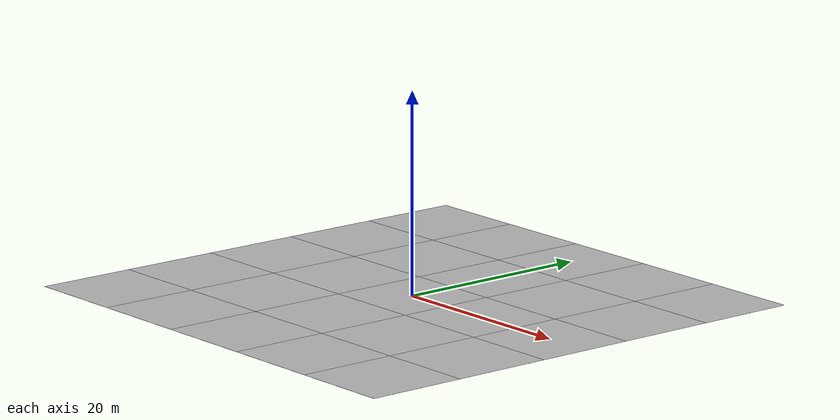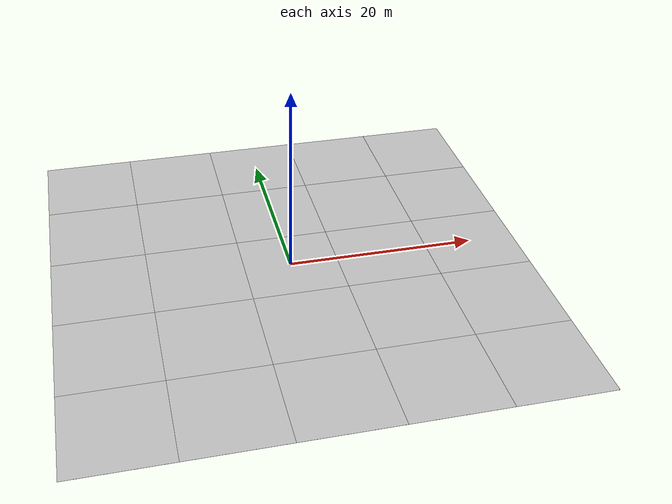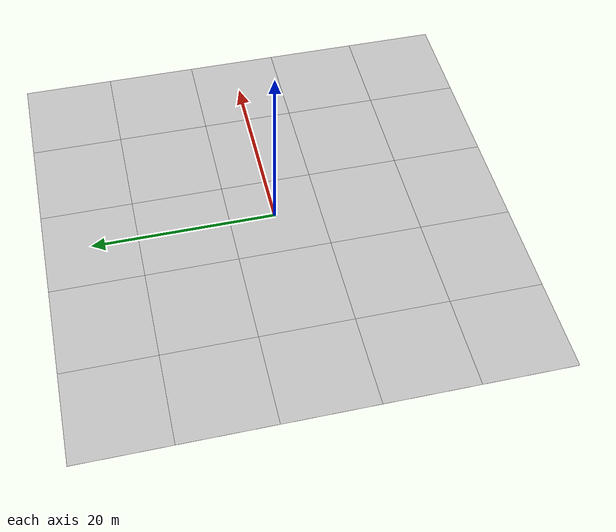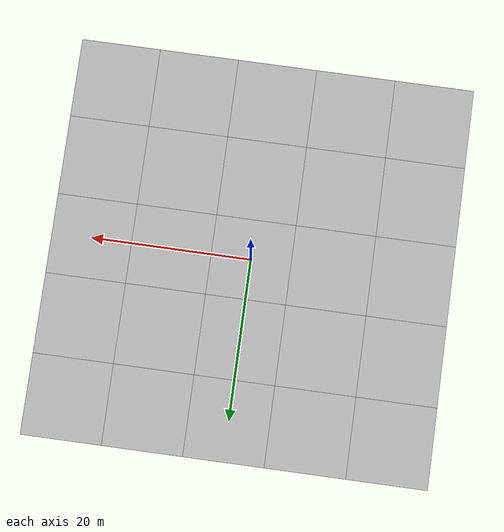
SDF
<?xml version='1.0'?>
<sdf version='1.6'>
  <world name='world_template_empty'>
    <gravity>0 0 -9.8</gravity>
    <scene>
      <ambient>0.4 0.4 0.4 1</ambient>
      <background>0.7 0.7 0.7 1</background>
      <shadows>true</shadows>
    </scene>

    <light name='sun' type='directional'>
      <cast_shadows>true</cast_shadows>
      <pose>0 0 20 0 0 0</pose>
      <diffuse>0.8 0.8 0.8 1</diffuse>
      <specular>0.2 0.2 0.2 1</specular>
      <attenuation>
        <range>1000</range>
        <constant>0.9</constant>
        <linear>0.01</linear>
        <quadratic>0.001</quadratic>
      </attenuation>
      <direction>-0.5 0.1 -0.9</direction>
    </light>

    <include>
      <uri>model://green_ground</uri>
      <name>green_ground</name>
      <pose>0 0 0 0 0 0</pose>
    </include>

    <!-- Fallback plain ground (use this only if green_ground is unavailable) -->

    <!-- Example: add your own instances using models from this package -->
  </world>
</sdf>

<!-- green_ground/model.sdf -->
<sdf version="1.6">
  <model name="green_ground">
    <static>true</static>
    <link name="link">
      <collision name="collision">
        <pose>0 0 0 0 0 0</pose>
        <geometry>
          <plane>
            <normal>0 0 1</normal>
            <size>200 200</size>
          </plane>
        </geometry>
      </collision>
      <visual name='visual_m20_m20'>
        <pose>-20 -20 0 0 0 0</pose>
        <geometry>
          <mesh>
            <uri>model://world_jean_ground/meshes/world_jean_ground.obj</uri>
            <scale>1 1 1</scale>
          </mesh>
        </geometry>
      </visual>      <visual name='visual_m20_m10'>
        <pose>-20 -10 0 0 0 0</pose>
        <geometry>
          <mesh>
            <uri>model://world_jean_ground/meshes/world_jean_ground.obj</uri>
            <scale>1 1 1</scale>
          </mesh>
        </geometry>
      </visual>      <visual name='visual_m20_0'>
        <pose>-20 0 0 0 0 0</pose>
        <geometry>
          <mesh>
            <uri>model://world_jean_ground/meshes/world_jean_ground.obj</uri>
            <scale>1 1 1</scale>
          </mesh>
        </geometry>
      </visual>      <visual name='visual_m20_10'>
        <pose>-20 10 0 0 0 0</pose>
        <geometry>
          <mesh>
            <uri>model://world_jean_ground/meshes/world_jean_ground.obj</uri>
            <scale>1 1 1</scale>
          </mesh>
        </geometry>
      </visual>      <visual name='visual_m20_20'>
        <pose>-20 20 0 0 0 0</pose>
        <geometry>
          <mesh>
            <uri>model://world_jean_ground/meshes/world_jean_ground.obj</uri>
            <scale>1 1 1</scale>
          </mesh>
        </geometry>
      </visual>      <visual name='visual_m10_m20'>
        <pose>-10 -20 0 0 0 0</pose>
        <geometry>
          <mesh>
            <uri>model://world_jean_ground/meshes/world_jean_ground.obj</uri>
            <scale>1 1 1</scale>
          </mesh>
        </geometry>
      </visual>      <visual name='visual_m10_m10'>
        <pose>-10 -10 0 0 0 0</pose>
        <geometry>
          <mesh>
            <uri>model://world_jean_ground/meshes/world_jean_ground.obj</uri>
            <scale>1 1 1</scale>
          </mesh>
        </geometry>
      </visual>      <visual name='visual_m10_0'>
        <pose>-10 0 0 0 0 0</pose>
        <geometry>
          <mesh>
            <uri>model://world_jean_ground/meshes/world_jean_ground.obj</uri>
            <scale>1 1 1</scale>
          </mesh>
        </geometry>
      </visual>      <visual name='visual_m10_10'>
        <pose>-10 10 0 0 0 0</pose>
        <geometry>
          <mesh>
            <uri>model://world_jean_ground/meshes/world_jean_ground.obj</uri>
            <scale>1 1 1</scale>
          </mesh>
        </geometry>
      </visual>      <visual name='visual_m10_20'>
        <pose>-10 20 0 0 0 0</pose>
        <geometry>
          <mesh>
            <uri>model://world_jean_ground/meshes/world_jean_ground.obj</uri>
            <scale>1 1 1</scale>
          </mesh>
        </geometry>
      </visual>      <visual name='visual_0_m20'>
        <pose>0 -20 0 0 0 0</pose>
        <geometry>
          <mesh>
            <uri>model://world_jean_ground/meshes/world_jean_ground.obj</uri>
            <scale>1 1 1</scale>
          </mesh>
        </geometry>
      </visual>      <visual name='visual_0_m10'>
        <pose>0 -10 0 0 0 0</pose>
        <geometry>
          <mesh>
            <uri>model://world_jean_ground/meshes/world_jean_ground.obj</uri>
            <scale>1 1 1</scale>
          </mesh>
        </geometry>
      </visual>      <visual name='visual_0_0'>
        <pose>0 0 0 0 0 0</pose>
        <geometry>
          <mesh>
            <uri>model://world_jean_ground/meshes/world_jean_ground.obj</uri>
            <scale>1 1 1</scale>
          </mesh>
        </geometry>
      </visual>      <visual name='visual_0_10'>
        <pose>0 10 0 0 0 0</pose>
        <geometry>
          <mesh>
            <uri>model://world_jean_ground/meshes/world_jean_ground.obj</uri>
            <scale>1 1 1</scale>
          </mesh>
        </geometry>
      </visual>      <visual name='visual_0_20'>
        <pose>0 20 0 0 0 0</pose>
        <geometry>
          <mesh>
            <uri>model://world_jean_ground/meshes/world_jean_ground.obj</uri>
            <scale>1 1 1</scale>
          </mesh>
        </geometry>
      </visual>      <visual name='visual_10_m20'>
        <pose>10 -20 0 0 0 0</pose>
        <geometry>
          <mesh>
            <uri>model://world_jean_ground/meshes/world_jean_ground.obj</uri>
            <scale>1 1 1</scale>
          </mesh>
        </geometry>
      </visual>      <visual name='visual_10_m10'>
        <pose>10 -10 0 0 0 0</pose>
        <geometry>
          <mesh>
            <uri>model://world_jean_ground/meshes/world_jean_ground.obj</uri>
            <scale>1 1 1</scale>
          </mesh>
        </geometry>
      </visual>      <visual name='visual_10_0'>
        <pose>10 0 0 0 0 0</pose>
        <geometry>
          <mesh>
            <uri>model://world_jean_ground/meshes/world_jean_ground.obj</uri>
            <scale>1 1 1</scale>
          </mesh>
        </geometry>
      </visual>      <visual name='visual_10_10'>
        <pose>10 10 0 0 0 0</pose>
        <geometry>
          <mesh>
            <uri>model://world_jean_ground/meshes/world_jean_ground.obj</uri>
            <scale>1 1 1</scale>
          </mesh>
        </geometry>
      </visual>      <visual name='visual_10_20'>
        <pose>10 20 0 0 0 0</pose>
        <geometry>
          <mesh>
            <uri>model://world_jean_ground/meshes/world_jean_ground.obj</uri>
            <scale>1 1 1</scale>
          </mesh>
        </geometry>
      </visual>      <visual name='visual_20_m20'>
        <pose>20 -20 0 0 0 0</pose>
        <geometry>
          <mesh>
            <uri>model://world_jean_ground/meshes/world_jean_ground.obj</uri>
            <scale>1 1 1</scale>
          </mesh>
        </geometry>
      </visual>      <visual name='visual_20_m10'>
        <pose>20 -10 0 0 0 0</pose>
        <geometry>
          <mesh>
            <uri>model://world_jean_ground/meshes/world_jean_ground.obj</uri>
            <scale>1 1 1</scale>
          </mesh>
        </geometry>
      </visual>      <visual name='visual_20_0'>
        <pose>20 0 0 0 0 0</pose>
        <geometry>
          <mesh>
            <uri>model://world_jean_ground/meshes/world_jean_ground.obj</uri>
            <scale>1 1 1</scale>
          </mesh>
        </geometry>
      </visual>      <visual name='visual_20_10'>
        <pose>20 10 0 0 0 0</pose>
        <geometry>
          <mesh>
            <uri>model://world_jean_ground/meshes/world_jean_ground.obj</uri>
            <scale>1 1 1</scale>
          </mesh>
        </geometry>
      </visual>      <visual name='visual_20_20'>
        <pose>20 20 0 0 0 0</pose>
        <geometry>
          <mesh>
            <uri>model://world_jean_ground/meshes/world_jean_ground.obj</uri>
            <scale>1 1 1</scale>
          </mesh>
        </geometry>
      </visual>      <self_collide>false</self_collide>
      <kinematic>false</kinematic>
    </link>
  </model>
</sdf>
